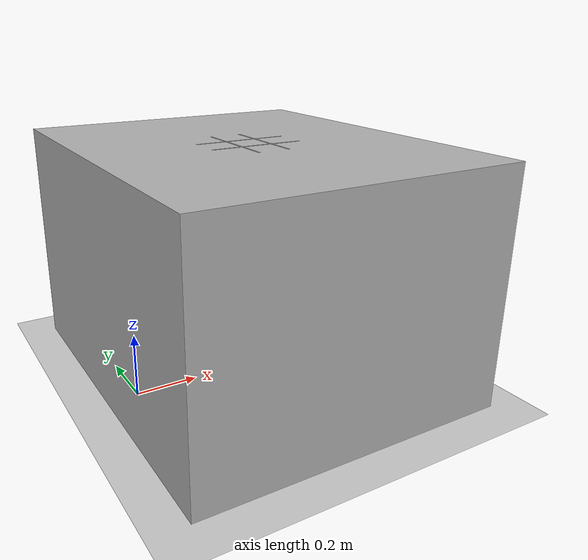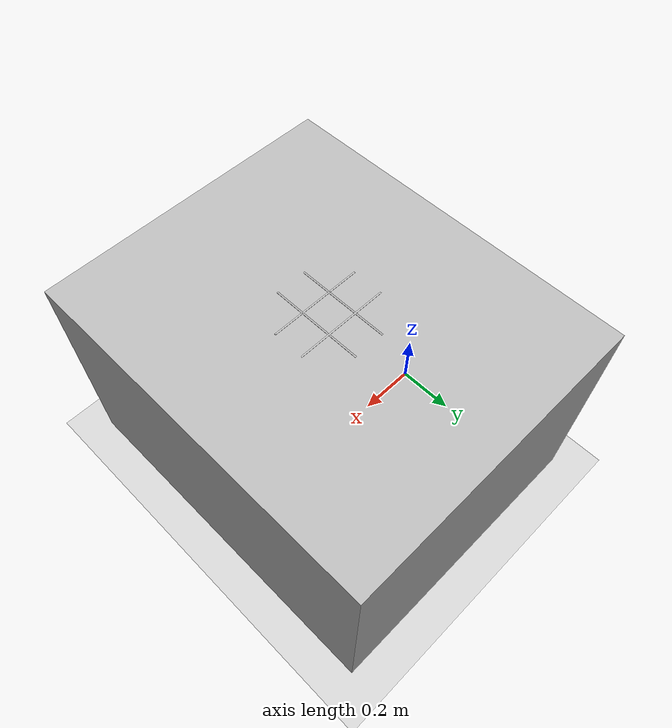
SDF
<?xml version="1.0" ?>
<sdf version="1.9">
  <world name="ttt_world">
    <physics name="1ms" type="ignored">
      <max_step_size>0.001</max_step_size>
      <real_time_factor>1.0</real_time_factor>
    </physics>

    <plugin filename="gz-sim-physics-system" name="gz::sim::systems::Physics"/>
    <plugin filename="gz-sim-user-commands-system" name="gz::sim::systems::UserCommands"/>
    <plugin filename="gz-sim-scene-broadcaster-system" name="gz::sim::systems::SceneBroadcaster"/>
    <plugin filename="gz-sim-sensors-system" name="gz::sim::systems::Sensors">
      <render_engine>ogre</render_engine>
    </plugin>

    <!-- Optional but useful for debugging grasp/contact behavior -->
    <plugin filename="gz-sim-contact-system" name="gz::sim::systems::Contact"/>

    <light type="directional" name="sun">
      <cast_shadows>true</cast_shadows>
      <pose>0 0 10 0 0 0</pose>
      <direction>-0.5 0.1 -0.9</direction>
    </light>

    <model name="ground_plane">
      <static>true</static>
      <link name="link">
        <collision name="collision">
          <geometry>
            <plane>
              <normal>0 0 1</normal>
              <size>100 100</size>
            </plane>
          </geometry>
        </collision>
        <visual name="visual">
          <geometry>
            <plane>
              <normal>0 0 1</normal>
              <size>100 100</size>
            </plane>
          </geometry>
          <material>
            <ambient>0.8 0.8 0.8 1</ambient>
          </material>
        </visual>
      </link>
    </model>

    <model name="game_table">
      <static>true</static>
      <pose>0.4 0 0.375 0 0 0</pose>
      <link name="link">
        <collision name="collision">
          <geometry>
            <box>
              <size>1.0 1.2 0.75</size>
            </box>
          </geometry>
        </collision>
        <visual name="visual">
          <geometry>
            <box>
              <size>1.0 1.2 0.75</size>
            </box>
          </geometry>
          <material>
            <ambient>0.3 0.3 0.3 1</ambient>
            <diffuse>0.7 0.7 0.7 1</diffuse>
          </material>
        </visual>
      </link>
    </model>

    <model name="ttt_grid">
      <static>true</static>
      <pose>0.4 0 0.751 0 0 0</pose>
      <link name="link">
        <visual name="v1"><pose>0 0.05 0 0 0 0</pose><geometry><box><size>0.3 0.005 0.001</size></box></geometry></visual>
        <visual name="v2"><pose>0 -0.05 0 0 0 0</pose><geometry><box><size>0.3 0.005 0.001</size></box></geometry></visual>
        <visual name="v3"><pose>0.05 0 0 0 0 1.57</pose><geometry><box><size>0.3 0.005 0.001</size></box></geometry></visual>
        <visual name="v4"><pose>-0.05 0 0 0 0 1.57</pose><geometry><box><size>0.3 0.005 0.001</size></box></geometry></visual>
      </link>
    </model>
  </world>
</sdf>
